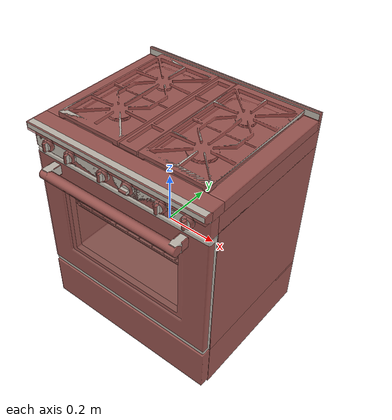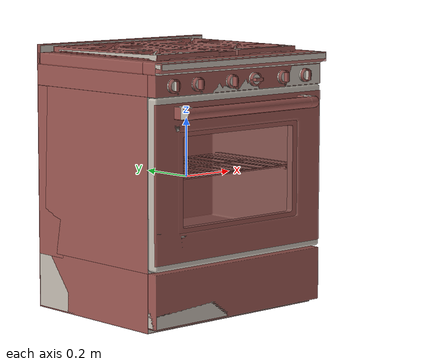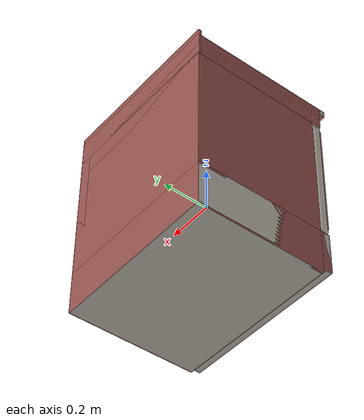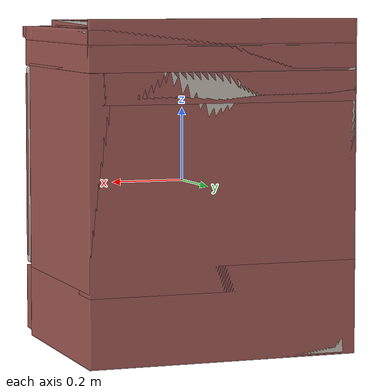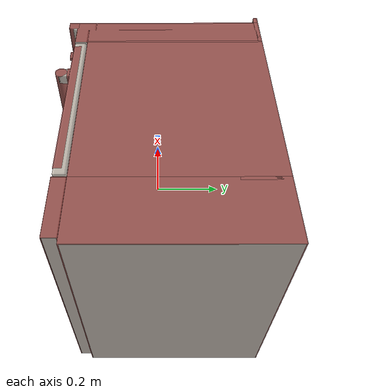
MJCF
<?xml version='1.0' encoding='UTF-8'?>
<mujoco model="model">
  <option timestep="0.002" gravity="0.0 0.0 -9.81"/>
  <compiler angle="radian"/>
  <asset>
    <mesh file="visuals/door.obj" name="door_vis"/>
    <mesh file="visuals/door_Clear.obj" name="door_Clear_vis"/>
    <mesh file="visuals/knob_front_left.obj" name="knob_front_left_vis"/>
    <mesh file="visuals/knob_front_right.obj" name="knob_front_right_vis"/>
    <mesh file="visuals/knob_rear_left.obj" name="knob_rear_left_vis"/>
    <mesh file="visuals/knob_rear_right.obj" name="knob_rear_right_vis"/>
    <mesh file="visuals/knob_temp.obj" name="knob_temp_vis"/>
    <mesh file="visuals/knob_time.obj" name="knob_time_vis"/>
    <mesh file="visuals/rack0.obj" name="rack0_vis"/>
    <mesh file="visuals/Body001.obj" name="Body001_vis"/>
    <texture file="visuals/T_BC001.png" name="Body001_material" type="2d"/>
    <material name="Body001_material" rgba="1 1 1 1.0" texture="Body001_material" shininess="0.2512328028678894" specular="1"/>
    <texture file="visuals/T_BC001.png" name="door_material" type="2d"/>
    <material name="door_material" rgba="1 1 1 1.0" texture="door_material" shininess="0.2512328028678894" specular="1"/>
    <texture file="visuals/T_BC001.png" name="door_Clear_material" type="2d"/>
    <material name="door_Clear_material" rgba="1 1 1 0.8" texture="door_Clear_material" shininess="0.2512328028678894" specular="0.3103448502657381"/>
    <texture file="visuals/T_BC001.png" name="knob_front_left_material" type="2d"/>
    <material name="knob_front_left_material" rgba="1 1 1 1.0" texture="knob_front_left_material" shininess="0.2512328028678894" specular="0.3103448502657381"/>
    <texture file="visuals/T_BC001.png" name="knob_front_right_material" type="2d"/>
    <material name="knob_front_right_material" rgba="1 1 1 1.0" texture="knob_front_right_material" shininess="0.2512328028678894" specular="0.3103448502657381"/>
    <texture file="visuals/T_BC001.png" name="knob_rear_left_material" type="2d"/>
    <material name="knob_rear_left_material" rgba="1 1 1 1.0" texture="knob_rear_left_material" shininess="0.2512328028678894" specular="0.3103448502657381"/>
    <texture file="visuals/T_BC001.png" name="knob_rear_right_material" type="2d"/>
    <material name="knob_rear_right_material" rgba="1 1 1 1.0" texture="knob_rear_right_material" shininess="0.2512328028678894" specular="0.3103448502657381"/>
    <texture file="visuals/T_BC001.png" name="knob_temp_material" type="2d"/>
    <material name="knob_temp_material" rgba="1 1 1 1.0" texture="knob_temp_material" shininess="0.2512328028678894" specular="0.3103448502657381"/>
    <texture file="visuals/T_BC001.png" name="knob_time_material" type="2d"/>
    <material name="knob_time_material" rgba="1 1 1 1.0" texture="knob_time_material" shininess="0.2512328028678894" specular="0.3103448502657381"/>
    <texture file="visuals/T_BC001.png" name="rack0_material" type="2d"/>
    <material name="rack0_material" rgba="1 1 1 1.0" texture="rack0_material" shininess="0.2512328028678894" specular="2"/>
  </asset>
  <default>
    <default class="visual">
      <geom conaffinity="0" contype="0" group="1" type="mesh"/>
    </default>
    <default class="collision">
      <geom group="0" rgba="0.5 0 0 0.5"/>
    </default>
    <default class="spawn">
      <geom group="0" rgba="1 1 1 0.5" contype="0" conaffinity="0"/>
      <site group="0" rgba="1 1 1 0.5"/>
    </default>
    <default class="region">
      <geom group="1" conaffinity="0" contype="0" rgba="0 1 0 0"/>
    </default>
  </default>
  <worldbody>
    <body>
      <body name="object">
        <geom mesh="Body001_vis" type="mesh" solimp="0.998 0.998 0.001" solref="0.001 1" friction="0.95 0.3 0.1" class="visual" material="Body001_material"/>
        <geom class="collision" type="box" pos="-0.34370777010917664 0.055402565747499466 0.029860632494091988" size="0.027956519275903702 0.2822645604610443 0.28328806161880493" quat="1.0 0.0 0.0 0.0"/>
        <geom class="collision" type="box" pos="0.3441360890865326 0.05540267750620842 0.029860632494091988" size="0.027528250589966774 0.2822646498680115 0.28328806161880493" quat="1.0 0.0 0.0 0.0"/>
        <geom class="collision" type="box" pos="2.865272108465433e-08 0.055402614176273346 -0.3220003545284271" size="0.3716641664505005 0.2822646200656891 0.12762944400310516" quat="1.0 0.0 0.0 0.0"/>
        <geom class="collision" type="box" pos="2.865272108465433e-08 -0.24717018008232117 -0.34322062134742737" size="0.3716641664505005 0.020308177918195724 0.09009308367967606" quat="1.0 0.0 0.0 0.0"/>
        <geom class="collision" type="box" pos="2.865272108465433e-08 0.055402614176273346 0.2752377688884735" size="0.3716641664505005 0.2822646200656891 0.04473291337490082" quat="1.0 0.0 0.0 0.0"/>
        <geom class="collision" type="box" pos="2.865272108465433e-08 0.27195870876312256 0.023885294795036316" size="0.3716641664505005 0.06570849567651749 0.28845295310020447" quat="1.0 0.0 0.0 0.0"/>
        <geom class="collision" type="box" pos="0.32416078448295593 0.0016778451390564442 0.017154984176158905" size="0.027589945122599602 0.17868469655513763 0.0013510260032489896" quat="1.0 0.0 0.0 0.0"/>
        <geom class="collision" type="box" pos="0.33909156918525696 0.0016778451390564442 0.027264580130577087" size="0.027589945122599602 0.17868469655513763 0.011460619047284126" quat="1.0 0.0 0.0 0.0"/>
        <geom class="collision" type="box" pos="0.3266005218029022 0.0016778451390564442 0.035905882716178894" size="0.027589945122599602 0.17868469655513763 0.003063765587285161" quat="1.0 0.0 0.0 0.0"/>
        <geom class="collision" type="box" pos="-0.3259783685207367 0.0016778451390564442 0.017107784748077393" size="0.027589945122599602 0.17868469655513763 0.0013038265751674771" quat="1.0 0.0 0.0 0.0"/>
        <geom class="collision" type="box" pos="-0.3385297656059265 0.0016778451390564442 0.027264580130577087" size="0.027589945122599602 0.17868469655513763 0.011460619047284126" quat="1.0 0.0 0.0 0.0"/>
        <geom class="collision" type="box" pos="-0.3271794319152832 0.0016778451390564442 0.035905882716178894" size="0.027589945122599602 0.17868469655513763 0.003063765587285161" quat="1.0 0.0 0.0 0.0"/>
        <geom class="collision" type="box" pos="-9.755603969097137e-08 0.03509461134672165 0.3678634762763977" size="0.37166425585746765 0.3025726079940796 0.054325878620147705" quat="1.0 0.0 0.0 0.0"/>
        <geom class="collision" type="box" pos="0.0009600934572517872 0.0598316453397274 0.4315316677093506" size="0.31158381700515747 0.26497572660446167 0.009428366087377071" quat="1.0 0.0 0.0 0.0"/>
        <geom class="collision" type="box" pos="-4.761386662721634e-08 0.33124834299087524 0.3842799961566925" size="0.37166422605514526 0.006418854929506779 0.06534989923238754" quat="1.0 0.0 0.0 0.0"/>
        <geom class="collision" type="box" pos="3.1062924676916737e-07 -0.27926474809646606 0.40633416175842285" size="0.37166422605514526 0.016079125925898552 0.01576913148164749" quat="1.0 0.0 0.0 0.0"/>
        <body name="door">
          <joint axis="1.0 0.0 0.0" pos="0.00013260284322313964 -0.26747801899909973 -0.2458133101463318" limited="true" name="door_joint" range="0.0 1.5707963267948966" type="hinge" damping="1" frictionloss="1" armature=".01" stiffness="0.05"/>
          <geom mesh="door_vis" type="mesh" solimp="0.998 0.998 0.001" solref="0.001 1" friction="0.95 0.3 0.1" class="visual" material="door_material"/>
          <geom class="collision" type="box" pos="5.809124559164047e-08 -0.25554361939430237 0.03270234540104866" size="0.3716631233692169 0.011934749782085419 0.2578780949115753" quat="1.0 0.0 0.0 0.0" name="door_main"/>
          <geom class="collision" type="cylinder" pos="-6.037313369233743e-07 -0.3186875581741333 0.26034876704216003" size="0.01962883584201336 0.29335910081863403" quat="0.4999999701976776 0.5 0.5 0.5" name="door_handle_main"/>
          <geom class="collision" type="box" pos="0.2766115665435791 -0.28067702054977417 0.2601949870586395" size="0.016746893525123596 0.017799803987145424 0.019988402724266052" quat="1.0 0.0 0.0 0.0"/>
          <geom class="collision" type="box" pos="-0.2769240438938141 -0.28067702054977417 0.2601949870586395" size="0.016746893525123596 0.017799803987145424 0.019988402724266052" quat="1.0 0.0 0.0 0.0"/>
          <geom class="collision" type="box" pos="5.809124559164047e-08 -0.24829308688640594 0.03270234912633896" size="0.2662014663219452 0.0020728178787976503 0.16036026179790497" quat="1.0 0.0 0.0 0.0"/>
          <body name="door_Clear">
            <geom mesh="door_Clear_vis" type="mesh" solimp="0.998 0.998 0.001" solref="0.001 1" friction="0.95 0.3 0.1" class="visual" material="door_Clear_material"/>
            <geom class="collision" type="box" pos="5.809124559164047e-08 -0.24829308688640594 0.03270234912633896" size="0.2662014663219452 0.0020728178787976503 0.16036026179790497" quat="1.0 0.0 0.0 0.0"/>
          </body>
        </body>
        <body name="knob_front_left">
          <joint axis="0.0 -1.0 0.0" pos="-0.3006363809108734 -0.27865397930145264 0.3468022644519806" limited="true" name="knob_front_left_joint" range="0.0 3.141592653589793" type="hinge" damping="0.05" armature="1" frictionloss="0.75"/>
          <geom mesh="knob_front_left_vis" type="mesh" solimp="0.998 0.998 0.001" solref="0.001 1" friction="0.95 0.3 0.1" class="visual" material="knob_front_left_material"/>
          <geom class="collision" type="cylinder" pos="-0.3004806935787201 -0.2749233841896057 0.34697121381759644" size="0.022574562579393387 0.006452969275414944" quat="0.7071068286895752 0.7071067690849304 0.0 0.0" friction="100 0.5 0.01"/>
          <geom class="collision" type="box" pos="-0.30066901445388794 -0.28849586844444275 0.3470154404640198" size="0.005231413524597883 0.008577979169785976 0.015703316777944565" quat="1.0 0.0 0.0 0.0" name="knob_front_left_main" friction="100 0.5 0.01"/>
        </body>
        <body name="knob_front_right">
          <joint axis="0.0 -1.0 0.0" pos="0.29257288575172424 -0.27865397930145264 0.3468022644519806" limited="true" name="knob_front_right_joint" range="0.0 3.141592653589793" type="hinge" damping="0.05" armature="1" frictionloss="0.75"/>
          <geom mesh="knob_front_right_vis" type="mesh" solimp="0.998 0.998 0.001" solref="0.001 1" friction="0.95 0.3 0.1" class="visual" material="knob_front_right_material"/>
          <geom class="collision" type="cylinder" pos="0.29287365078926086 -0.2749233841896057 0.34697121381759644" size="0.022574562579393387 0.006452969275414944" quat="0.7071068286895752 0.7071067690849304 0.0 0.0" friction="100 0.5 0.01"/>
          <geom class="collision" type="box" pos="0.29268530011177063 -0.28849586844444275 0.3470154404640198" size="0.005231413524597883 0.008577979169785976 0.015703316777944565" quat="1.0 0.0 0.0 0.0" name="knob_front_right_main" friction="100 0.5 0.01"/>
        </body>
        <body name="knob_rear_left">
          <joint axis="0.0 -1.0 0.0" pos="-0.1970641016960144 -0.27865397930145264 0.3468022644519806" limited="true" name="knob_rear_left_joint" range="0.0 3.141592653589793" type="hinge" damping="0.05" armature="1" frictionloss="0.75"/>
          <geom mesh="knob_rear_left_vis" type="mesh" solimp="0.998 0.998 0.001" solref="0.001 1" friction="0.95 0.3 0.1" class="visual" material="knob_rear_left_material"/>
          <geom class="collision" type="cylinder" pos="-0.19711965322494507 -0.2749233841896057 0.34697121381759644" size="0.022574562579393387 0.006452969275414944" quat="0.7071068286895752 0.7071067690849304 0.0 0.0" friction="100 0.5 0.01"/>
          <geom class="collision" type="box" pos="-0.19730797410011292 -0.28849586844444275 0.3470154404640198" size="0.005231413524597883 0.008577979169785976 0.015703316777944565" quat="1.0 0.0 0.0 0.0" name="knob_rear_left_main" friction="100 0.5 0.01"/>
        </body>
        <body name="knob_rear_right">
          <joint axis="0.0 -1.0 0.0" pos="0.18860802054405212 -0.27865397930145264 0.3468022644519806" limited="true" name="knob_rear_right_joint" range="0.0 3.141592653589793" type="hinge" damping="0.05" armature="1" frictionloss="0.75"/>
          <geom mesh="knob_rear_right_vis" type="mesh" solimp="0.998 0.998 0.001" solref="0.001 1" friction="0.95 0.3 0.1" class="visual" material="knob_rear_right_material"/>
          <geom class="collision" type="cylinder" pos="0.18872560560703278 -0.2749233841896057 0.34697121381759644" size="0.022574562579393387 0.006452969275414944" quat="0.7071068286895752 0.7071067690849304 0.0 0.0" friction="100 0.5 0.01"/>
          <geom class="collision" type="box" pos="0.18853728473186493 -0.28849586844444275 0.3470154404640198" size="0.005231413524597883 0.008577979169785976 0.015703316777944565" quat="1.0 0.0 0.0 0.0" name="knob_rear_right_main" friction="100 0.5 0.01"/>
        </body>
        <body name="knob_temp">
          <joint axis="0.0 1.0 0.0" pos="0.0571848563849926 -0.27865397930145264 0.3470958471298218" limited="true" name="knob_temp_joint" range="0.0 3.2288591161895095" type="hinge" damping="0.05" armature="1" frictionloss="0.75"/>
          <geom mesh="knob_temp_vis" type="mesh" solimp="0.998 0.998 0.001" solref="0.001 1" friction="0.95 0.3 0.1" class="visual" material="knob_temp_material"/>
          <geom class="collision" type="cylinder" pos="0.05717620998620987 -0.2749233841896057 0.34697121381759644" size="0.022574562579393387 0.006452969275414944" quat="0.7071068286895752 0.7071067690849304 0.0 0.0" friction="100 0.5 0.01"/>
          <geom class="collision" type="box" pos="0.05673101916909218 -0.28849586844444275 0.3470154404640198" size="0.015703316777944565 0.008577979169785976 0.005231414455920458" quat="1.0 0.0 0.0 0.0" name="knob_temp_main" friction="100 0.5 0.01"/>
        </body>
        <body name="knob_time">
          <joint axis="0.0 1.0 0.0" pos="-0.04638072848320007 -0.27865397930145264 0.3468022644519806" limited="true" name="knob_time_joint" range="0.0 4.014257279586958" type="hinge" damping="0.05" armature="1" frictionloss="0.75"/>
          <geom mesh="knob_time_vis" type="mesh" solimp="0.998 0.998 0.001" solref="0.001 1" friction="0.95 0.3 0.1" class="visual" material="knob_time_material"/>
          <geom class="collision" type="cylinder" pos="-0.04642404615879059 -0.2749233841896057 0.34697121381759644" size="0.022574562579393387 0.006452969275414944" quat="0.7071068286895752 0.7071067690849304 0.0 0.0" friction="100 0.5 0.01"/>
          <geom class="collision" type="box" pos="-0.046612367033958435 -0.28849586844444275 0.3470154404640198" size="0.005231413524597883 0.008577979169785976 0.015703316777944565" quat="1.0 0.0 0.0 0.0" name="knob_time_main" friction="100 0.5 0.01"/>
        </body>
        <body name="rack0">
          <geom class="region" name="reg_rack0" type="box" pos="0.0016411244869232178 0.0022912994027137756 0.1323176622390747" size="0.28731556034088135 0.18806446141004562 0.09395633435249329"/>
          <joint axis="0.0 -1.0 0.0" pos="-0.0013591349124908447 0.001485973596572876 0.02870890498161316" limited="true" name="rack0_joint" range="0.0 0.32" type="slide" damping="1" frictionloss="1" armature=".01" stiffness="0.05"/>
          <geom mesh="rack0_vis" type="mesh" solimp="0.998 0.998 0.001" solref="0.001 1" friction="0.95 0.3 0.1" class="visual" material="rack0_material"/>
          <geom class="collision" type="box" pos="0.0013725600438192487 0.0020056001376360655 0.030935153365135193" size="0.2908157706260681 0.19227856397628784 0.0032185327727347612" quat="1.0 0.0 0.0 0.0"/>
          <geom class="collision" type="box" pos="0.3009769022464752 0.0020056001376360655 0.02623455971479416" size="0.008858409710228443 0.19227856397628784 0.0032185327727347612" quat="0.9565491080284119 0.0 0.2915712893009186 0.0"/>
          <geom class="collision" type="box" pos="-0.29966482520103455 0.0020056001376360655 0.025966238230466843" size="0.0083773797377944 0.19227856397628784 0.003218533005565405" quat="0.9565491080284119 0.0 -0.2915712893009186 0.0"/>
        </body>
        <site type="cylinder" rgba="0.3 0.4 1 0.5" size="0.05018463358283043 0.012921927496790886" pos="-0.17750167846679688 -0.055366795510053635 0.4207381010055542" name="burner_on_front_left"/>
        <site type="cylinder" rgba="0.3 0.4 1 0.5" size="0.05801250413060188 0.012921927496790886" pos="0.17701506614685059 -0.05651754140853882 0.4207381010055542" name="burner_on_front_right"/>
        <site type="cylinder" rgba="0.3 0.4 1 0.5" size="0.032826438546180725 0.012921927496790886" pos="-0.17778095602989197 0.17980557680130005 0.4208117425441742" name="burner_on_rear_left"/>
        <site type="cylinder" rgba="0.3 0.4 1 0.5" size="0.04053257405757904 0.012921927496790886" pos="0.17698660492897034 0.17944277822971344 0.4207381010055542" name="burner_on_rear_right"/>
        <geom class="region" name="reg_int" type="box" pos="-0.0008481442928314209 -0.010057419538497925 0.018408454954624176" size="0.29206298089027405 0.21214583313465118 0.20786554163694382"/>
        <site type="cylinder" rgba="0.5 0 0 0" size="0.05018463358283043 4.999999873689376e-05" pos="-0.17750167846679688 -0.055366795510053635 0.44100600481033325" name="burner_front_left_place_site"/>
        <site type="cylinder" rgba="0.5 0 0 0" size="0.05801250413060188 4.999999873689376e-05" pos="0.17701506614685059 -0.05651754140853882 0.44100600481033325" name="burner_front_right_place_site"/>
        <site type="cylinder" rgba="0.5 0 0 0" size="0.032826438546180725 4.999999873689376e-05" pos="-0.17778095602989197 0.17980557680130005 0.44100600481033325" name="burner_rear_left_place_site"/>
        <site type="cylinder" rgba="0.5 0 0 0" size="0.04053257405757904 4.999999873689376e-05" pos="0.17698660492897034 0.17882971465587616 0.44100600481033325" name="burner_rear_right_place_site"/>
        <geom class="region" name="reg_main" type="box" pos="-7.450580596923828e-09 0.03509463369846344 -0.013720221817493439" size="0.3726643154621124 0.3035726079940796 0.43690956926345825"/>
      </body>
    </body>
  </worldbody>
  <actuator>
    <motor name="door_joint_actuator" joint="door_joint" gear="50"/>
    <motor name="knob_front_left_joint_actuator" joint="knob_front_left_joint" gear="50"/>
    <motor name="knob_front_right_joint_actuator" joint="knob_front_right_joint" gear="50"/>
    <motor name="knob_rear_left_joint_actuator" joint="knob_rear_left_joint" gear="50"/>
    <motor name="knob_rear_right_joint_actuator" joint="knob_rear_right_joint" gear="50"/>
    <motor name="knob_temp_joint_actuator" joint="knob_temp_joint" gear="50"/>
    <motor name="knob_time_joint_actuator" joint="knob_time_joint" gear="50"/>
    <motor name="rack0_joint_actuator" joint="rack0_joint" gear="50"/>
  </actuator>
</mujoco>
